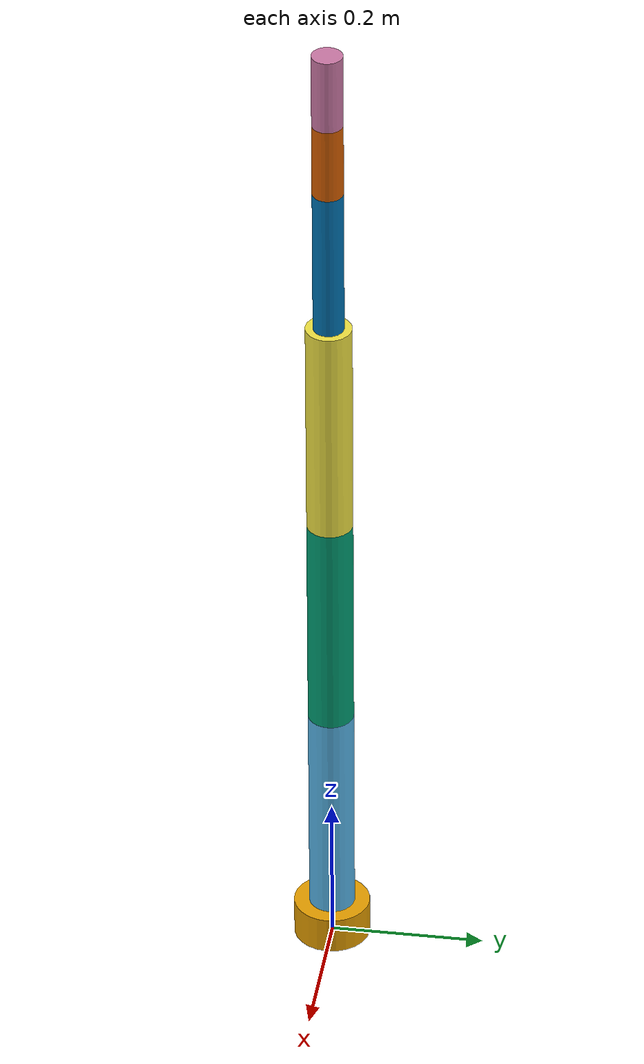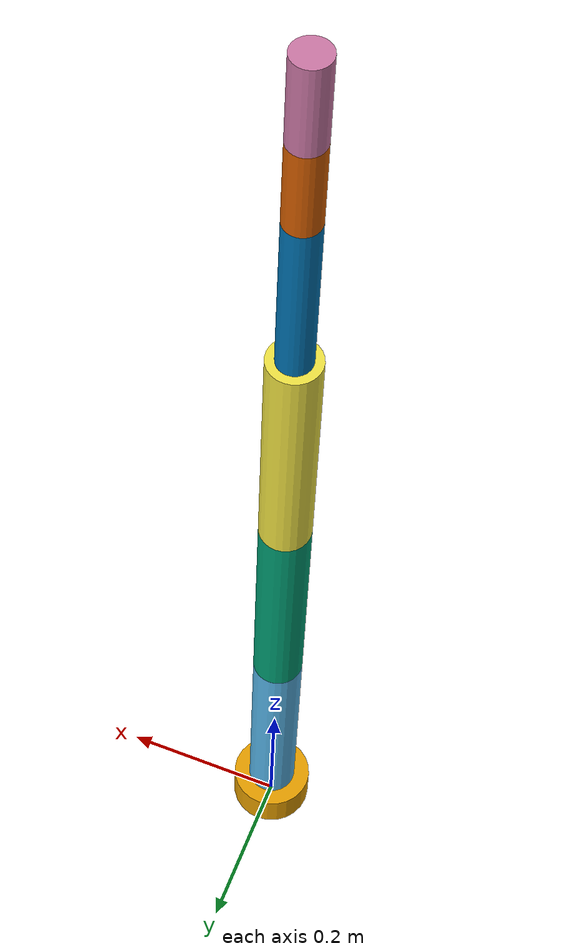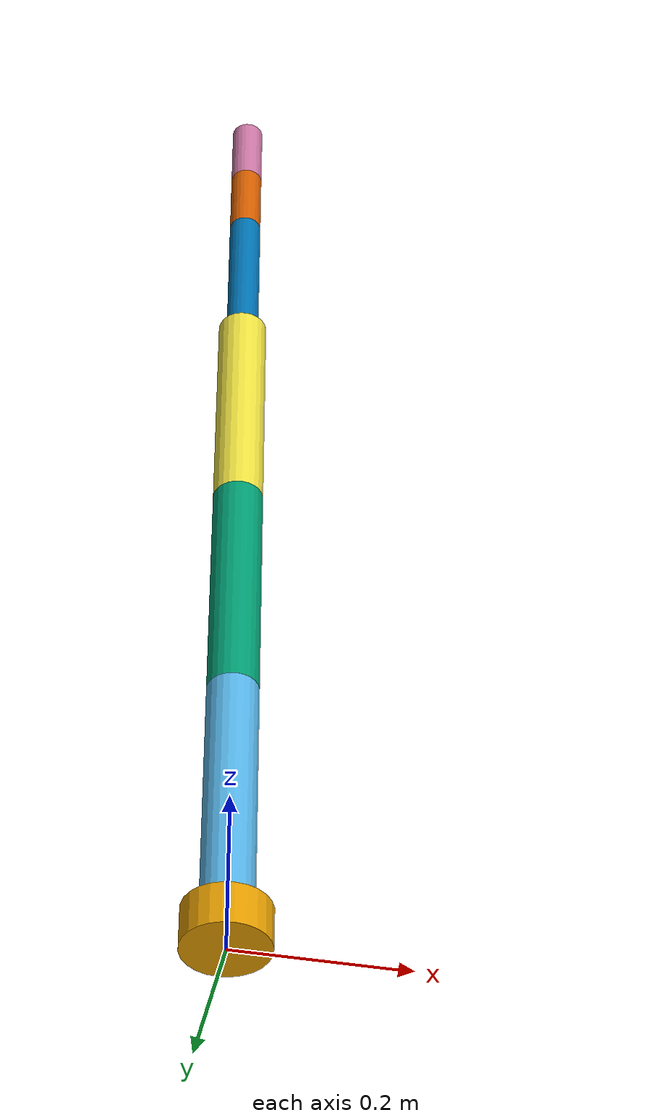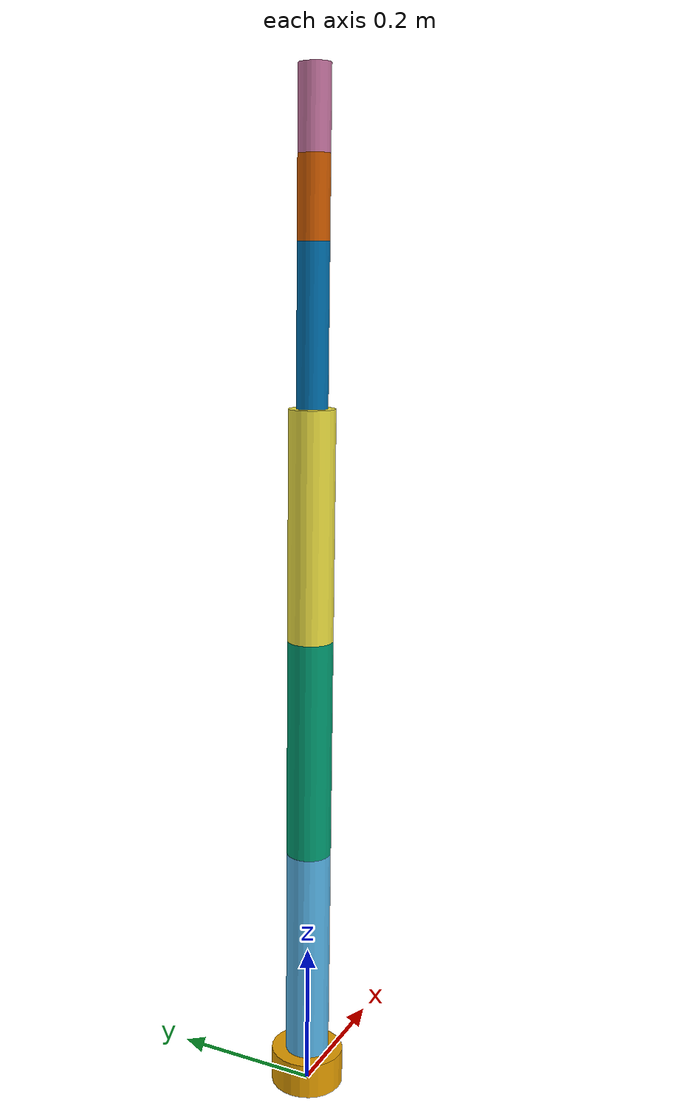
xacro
<?xml version="1.0"?>
<!-- Xacro-based description for 6-DOF arm with ros_control and Gazebo plugin -->
<robot xmlns:xacro="http://ros.org/wiki/xacro" name="six_dof_arm">

  <!-- Properties for dimensions -->
  <xacro:property name="base_h" value="0.05" />
  <xacro:property name="base_r" value="0.05" />
  <xacro:property name="l1_len" value="0.30" />
  <xacro:property name="l2_len" value="0.30" />
  <xacro:property name="l3_len" value="0.30" />
  <xacro:property name="l4_len" value="0.20" />
  <xacro:property name="l5_len" value="0.10" />
  <xacro:property name="tool_len" value="0.10" />
  <xacro:property name="big_r" value="0.03" />
  <xacro:property name="small_r" value="0.02" />

  <!-- Base Link -->
  <link name="base_link">
    <visual>
      <origin xyz="0 0 ${base_h/2}" rpy="0 0 0"/>
      <geometry>
        <cylinder length="${base_h}" radius="${base_r}"/>
      </geometry>
    </visual>
    <collision>
      <origin xyz="0 0 ${base_h/2}" rpy="0 0 0"/>
      <geometry>
        <cylinder length="${base_h}" radius="${base_r}"/>
      </geometry>
    </collision>
    <inertial>
      <origin xyz="0 0 ${base_h/2}" rpy="0 0 0"/>
      <mass value="2.0"/>
      <inertia ixx="0.01" iyy="0.01" izz="0.01" ixy="0" ixz="0" iyz="0"/>
    </inertial>
  </link>

  <!-- Link 1 & Joint 1 -->
  <link name="link_1">
    <visual>
      <origin xyz="0 0 ${l1_len/2}" rpy="0 0 0"/>
      <geometry><cylinder length="${l1_len}" radius="${big_r}"/></geometry>
    </visual>
    <collision>
      <origin xyz="0 0 ${l1_len/2}" rpy="0 0 0"/>
      <geometry><cylinder length="${l1_len}" radius="${big_r}"/></geometry>
    </collision>
    <inertial>
      <origin xyz="0 0 ${l1_len/2}" rpy="0 0 0"/>
      <mass value="1.06"/>
      <inertia ixx="0.008191" iyy="0.008191" izz="0.000477" ixy="0" ixz="0" iyz="0"/>
    </inertial>
  </link>
  <joint name="joint_1" type="revolute">
    <parent link="base_link"/>
    <child link="link_1"/>
    <origin xyz="0 0 ${base_h}" rpy="0 0 0"/>
    <axis xyz="0 0 1"/>
    <limit lower="-3.1416" upper="3.1416" effort="10" velocity="1.0"/>
  </joint>

  <!-- Link 2 & Joint 2 -->
  <link name="link_2">
    <visual>
      <origin xyz="0 0 ${l2_len/2}" rpy="0 0 0"/>
      <geometry><cylinder length="${l2_len}" radius="${big_r}"/></geometry>
    </visual>
    <collision>
      <origin xyz="0 0 ${l2_len/2}" rpy="0 0 0"/>
      <geometry><cylinder length="${l2_len}" radius="${big_r}"/></geometry>
    </collision>
    <inertial>
      <origin xyz="0 0 ${l2_len/2}" rpy="0 0 0"/>
      <mass value="1.06"/>
      <inertia ixx="0.008191" iyy="0.008191" izz="0.000477" ixy="0" ixz="0" iyz="0"/>
    </inertial>
  </link>
  <joint name="joint_2" type="revolute">
    <parent link="link_1"/>
    <child link="link_2"/>
    <origin xyz="0 0 ${l1_len}" rpy="0 0 0"/>
    <axis xyz="0 1 0"/>
    <limit lower="-1.5708" upper="1.5708" effort="10" velocity="1.0"/>
  </joint>

  <!-- Link 3 & Joint 3 -->
  <link name="link_3">
    <visual>
      <origin xyz="0 0 ${l3_len/2}" rpy="0 0 0"/>
      <geometry><cylinder length="${l3_len}" radius="${big_r}"/></geometry>
    </visual>
    <collision>
      <origin xyz="0 0 ${l3_len/2}" rpy="0 0 0"/>
      <geometry><cylinder length="${l3_len}" radius="${big_r}"/></geometry>
    </collision>
    <inertial>
      <origin xyz="0 0 ${l3_len/2}" rpy="0 0 0"/>
      <mass value="1.06"/>
      <inertia ixx="0.008191" iyy="0.008191" izz="0.000477" ixy="0" ixz="0" iyz="0"/>
    </inertial>
  </link>
  <joint name="joint_3" type="revolute">
    <parent link="link_2"/>
    <child link="link_3"/>
    <origin xyz="0 0 ${l2_len}" rpy="0 0 0"/>
    <axis xyz="0 1 0"/>
    <limit lower="-1.5708" upper="1.5708" effort="10" velocity="1.0"/>
  </joint>

  <!-- Link 4 & Joint 4 -->
  <link name="link_4">
    <visual>
      <origin xyz="0 0 ${l4_len/2}" rpy="0 0 0"/>
      <geometry><cylinder length="${l4_len}" radius="${small_r}"/></geometry>
    </visual>
    <collision>
      <origin xyz="0 0 ${l4_len/2}" rpy="0 0 0"/>
      <geometry><cylinder length="${l4_len}" radius="${small_r}"/></geometry>
    </collision>
    <inertial>
      <origin xyz="0 0 ${l4_len/2}" rpy="0 0 0"/>
      <mass value="0.5"/>
      <inertia ixx="0.002" iyy="0.002" izz="0.0001" ixy="0" ixz="0" iyz="0"/>
    </inertial>
  </link>
  <joint name="joint_4" type="revolute">
    <parent link="link_3"/>
    <child link="link_4"/>
    <origin xyz="0 0 ${l3_len}" rpy="0 0 0"/>
    <axis xyz="0 0 1"/>
    <limit lower="-3.1416" upper="3.1416" effort="5" velocity="1.0"/>
  </joint>

  <!-- Link 5 & Joint 5 -->
  <link name="link_5">
    <visual>
      <origin xyz="0 0 ${l5_len/2}" rpy="0 0 0"/>
      <geometry><cylinder length="${l5_len}" radius="${small_r}"/></geometry>
    </visual>
    <collision>
      <origin xyz="0 0 ${l5_len/2}" rpy="0 0 0"/>
      <geometry><cylinder length="${l5_len}" radius="${small_r}"/></geometry>
    </collision>
    <inertial>
      <origin xyz="0 0 ${l5_len/2}" rpy="0 0 0"/>
      <mass value="0.3"/>
      <inertia ixx="0.0005" iyy="0.0005" izz="0.00002" ixy="0" ixz="0" iyz="0"/>
    </inertial>
  </link>
  <joint name="joint_5" type="revolute">
    <parent link="link_4"/>
    <child link="link_5"/>
    <origin xyz="0 0 ${l4_len}" rpy="0 0 0"/>
    <axis xyz="0 1 0"/>
    <limit lower="-1.5708" upper="1.5708" effort="5" velocity="1.0"/>
  </joint>

  <!-- Tool link & Joint 6 -->
  <link name="tool_link">
    <visual>
      <origin xyz="0 0 ${tool_len/2}" rpy="0 0 0"/>
      <geometry><cylinder length="${tool_len}" radius="${small_r}"/></geometry>
    </visual>
    <collision>
      <origin xyz="0 0 ${tool_len/2}" rpy="0 0 0"/>
      <geometry><cylinder length="${tool_len}" radius="${small_r}"/></geometry>
    </collision>
    <inertial>
      <origin xyz="0 0 ${tool_len/2}" rpy="0 0 0"/>
      <mass value="0.2"/>
      <inertia ixx="0.0002" iyy="0.0002" izz="0.00001" ixy="0" ixz="0" iyz="0"/>
    </inertial>
  </link>
  <joint name="joint_6" type="revolute">
    <parent link="link_5"/>
    <child link="tool_link"/>
    <origin xyz="0 0 ${l5_len}" rpy="0 0 0"/>
    <axis xyz="0 0 1"/>
    <limit lower="-3.1416" upper="3.1416" effort="5" velocity="1.0"/>
  </joint>

  <!-- Gazebo ros_control plugin -->
  <gazebo>
    <plugin name="gazebo_ros_control" filename="libgazebo_ros_control.so"/>
  </gazebo>

  <!-- Transmission macro -->
  <xacro:macro name="transmission_block" params="joint actuator">
    <transmission name="${joint}_trans">
      <type>transmission_interface/SimpleTransmission</type>
      <joint name="${joint}">
        <hardwareInterface>hardware_interface/PositionJointInterface</hardwareInterface>
      </joint>
      <actuator name="${actuator}">
        <hardwareInterface>hardware_interface/PositionJointInterface</hardwareInterface>
        <mechanicalReduction>1</mechanicalReduction>
      </actuator>
    </transmission>
  </xacro:macro>

  <!-- Instantiate transmissions for each joint -->
  <xacro:transmission_block joint="joint_1" actuator="joint_1_motor"/>
  <xacro:transmission_block joint="joint_2" actuator="joint_2_motor"/>
  <xacro:transmission_block joint="joint_3" actuator="joint_3_motor"/>
  <xacro:transmission_block joint="joint_4" actuator="joint_4_motor"/>
  <xacro:transmission_block joint="joint_5" actuator="joint_5_motor"/>
  <xacro:transmission_block joint="joint_6" actuator="joint_6_motor"/>

</robot>
